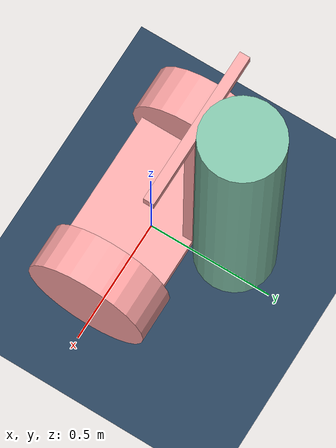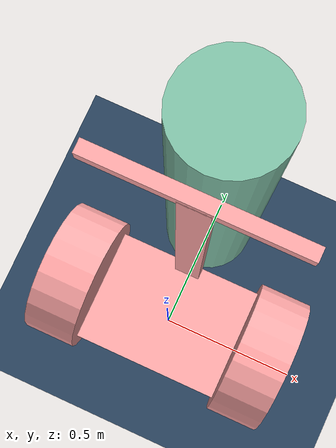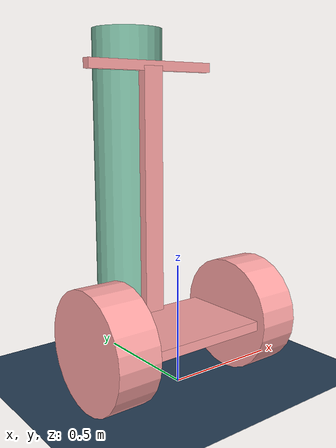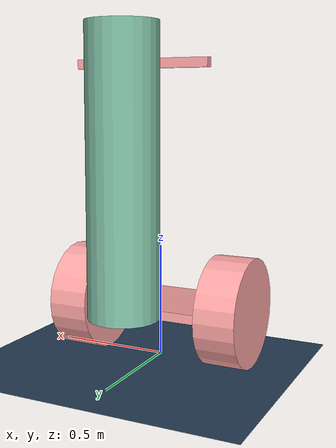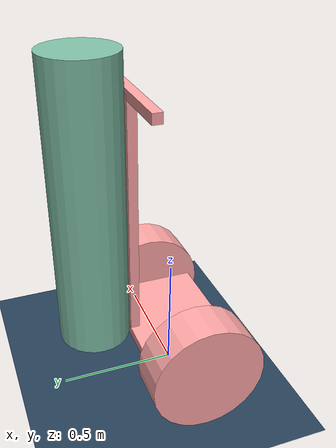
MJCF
<mujoco model="golf follow scene">
    <compiler angle="radian"/>
    <size njmax="500" nconmax="100"/>
    <!-- timestep=0.001：行人被动关节(小armature)在默认2ms步长下会数值发散，需1ms -->
    <option gravity="0 0 -9.81" viscosity="0.002" timestep="0.001"/>

    <default>
        <!-- 所有 geom 默认不参与碰撞 -->
        <geom contype="0" conaffinity="0"/>
    </default>

    <!-- ========== 引入模型模块 ========== -->
    <include file="golf10_barfh.xml"/>

    <!-- ========== 统计 & 视觉 ========== -->
    <statistic center="0 0 0.3" extent="0.3"/>

    <visual>
        <headlight diffuse="0.6 0.6 0.6" ambient="0.3 0.3 0.3" specular="0 0 0"/>
        <rgba haze="0.15 0.25 0.35 1"/>
        <global azimuth="120" elevation="-15" fovy="50"/>
    </visual>

    <asset>
        <!-- ========== 行人材质（human.xml 依赖，从原 ebike 场景迁移） ========== -->
        <material name="mat_head" rgba="1 0.8 0.6 1"/>
        <material name="mat_handfoot" rgba="0.9 0.8 0.7 1"/>
        <material name="mat_torso" rgba="0.8 0.4 0.7 1"/>
        <material name="mat_arm" rgba="1.0 0.7 0.9 1"/>
        <material name="mat_leg" rgba="0.7 0.4 0.6 1"/>

        <!-- 天空盒 -->
        <texture type="skybox" builtin="gradient" rgb1="0.8 0.8 0.8" rgb2="0 0.3 0.5"
                 width="512" height="3072"/>
        <!-- 地面纹理 -->
        <texture type="2d" name="groundplane" builtin="checker" mark="edge"
                 rgb1="0.2 0.3 0.4" rgb2="0.1 0.2 0.3" markrgb="0.8 0.8 0.8"
                 width="300" height="300"/>
        <material name="groundplane" texture="groundplane" texuniform="true"
                  texrepeat="2 2" reflectance="0.2"/>
    </asset>

    <worldbody>
        <light pos="0 0 1.5" dir="0 0 -1" directional="true"/>
        <!-- 地面：唯一接触基准（与车轮 contype=2/conaffinity=1 互配） -->
        <geom name="ground" size="0 0 0.05" type="plane" friction="1.0 1.0 0.1"
              pos="0 0 0" material="groundplane" contype="1" conaffinity="2"/>
    </worldbody>
</mujoco>

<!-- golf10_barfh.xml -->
<!-- 双轮差速高尔夫球车模型 -->
<!-- 尺寸：轮径48cm，轮宽18cm，轴长70cm，车把104cm，球包120cm -->
<!-- 质量：底盘37.8kg，车把5kg，球包10kg，车轮4.5kg×2，总重61.8kg -->
<mujoco model="golf10_barth">
    <!-- 材质 -->
    <asset>
        <texture type="2d" name="wheel_texture" builtin="checker" mark="edge"
                 rgb1="1 1 1" rgb2="1 0.3 0.3"
                 markrgb="0.3 0.3 0.3" width="1024" height="1024"/>
        <material name="wheel_mat" texture="wheel_texture" texuniform="true" texrepeat="5 5"/>
        <texture type="2d" name="body_texture" builtin="gradient" rgb1="1 1 1"
                 rgb2="1 0.3 0.3" width="512" height="512"/>
        <material name="body_mat" texture="body_texture" texrepeat="4 2" shininess="0.3"/>
        <texture type="2d" name="bag_texture" builtin="gradient" rgb1="1 1 1"
                 rgb2="0 0.5 0.3" width="256" height="256"/>
        <material name="bag_mat" texture="bag_texture" texrepeat="4 2" shininess="0.3"/>
    </asset>

    <worldbody>

        <!-- 整车（轮轴中心离地0.24m） -->
        <body name="segway" pos="0 0 0.24">
            <joint name="segway_free" type="free" damping="0.05"/>

            <!-- 底盘（位于车轮中心高度） -->
            <body name="chassis" pos="0 0 0">
                <inertial pos="0.0 -0.06 0.0" quat="0.707107 0 0 0.707107"
                          mass="37.8" diaginertia="0.75 1.35 1.60"/>
                <geom type="box" size="0.35 0.20 0.02" material="body_mat"/>
            </body>

            <!-- 车把：长104cm，底部从轮轴稍上方开始 -->
            <body name="handlebar" pos="0 0 0.02">
                <inertial pos="0.0 0.0 0.0" quat="0.707107 0 0 0.707107"
                          mass="5.0" diaginertia="0.5 0.45 0.05"/>
                <geom type="box" size="0.045 0.02 0.52" pos="0 0.18 0.52" material="body_mat"/>
                <geom type="box" size="0.3 0.02 0.02" pos="0 0.18 1.04" material="body_mat"/>

                <!-- 增加一个球包挂点，让球包可以在转弯时模拟左右摇晃 -->
                <body name="bag_mount" pos="0 0.35 1.2">  <!-- 0 0 1.2是中心位置 0 0.35 1.2是球包挂前面 -->
                    <!-- 左右摆动 -->
                    <joint name="bag_swing" type="hinge" axis="0 1 0" limited="true"
                           range="-0.05 0.05" damping="2"/>
                    <!-- 球包 -->
                    <body name="golf_bag" pos="0 0 -0.6">
                        <inertial pos="0 0 0" mass="10" diaginertia="1.10 1.10 0.10"/>
                        <geom type="cylinder" size="0.15 0.6" material="bag_mat"/>
                    </body>
                </body>
            </body>

            <!-- 左轮：直径48cm，宽18cm，位置x=-0.35 -->
            <body name="l_wheel" pos="-0.35 0 0">
                <inertial pos="0 0 0" quat="0.5 0.5 -0.5 0.5"
                          mass="4.5" diaginertia="0.085 0.043 0.043"/>
                <joint name="torso_l_wheel" type="hinge" pos="0 0 0" axis="-1 0 0" damping="0.02"/>
                <geom type="cylinder" size="0.24 0.09" quat="0.707107 0 0.707107 0"
                      material="wheel_mat" contype="2" conaffinity="1" friction="2 1 0.8"/>
            </body>

            <!-- 右轮：直径48cm，宽18cm，位置x=0.35 -->
            <body name="r_wheel" pos="0.35 0 0">
                <inertial pos="0 0 0" quat="0.5 0.5 -0.5 0.5"
                          mass="4.5" diaginertia="0.085 0.043 0.043"/>
                <joint name="torso_r_wheel" type="hinge" pos="0 0 0" axis="-1 0 0" damping="0.02"/>
                <geom type="cylinder" size="0.24 0.09" quat="0.707107 0 0.707107 0"
                      material="wheel_mat" contype="2" conaffinity="1" friction="2 1 0.8"/>
            </body>
        </body>
    </worldbody>

    <actuator>
        <!-- 电机 -->
        <motor name="motor_l_wheel" joint="torso_l_wheel" gear="1" ctrllimited="true" ctrlrange="-50 50"/>
        <motor name="motor_r_wheel" joint="torso_r_wheel" gear="1" ctrllimited="true" ctrlrange="-50 50"/>
    </actuator>

</mujoco>
